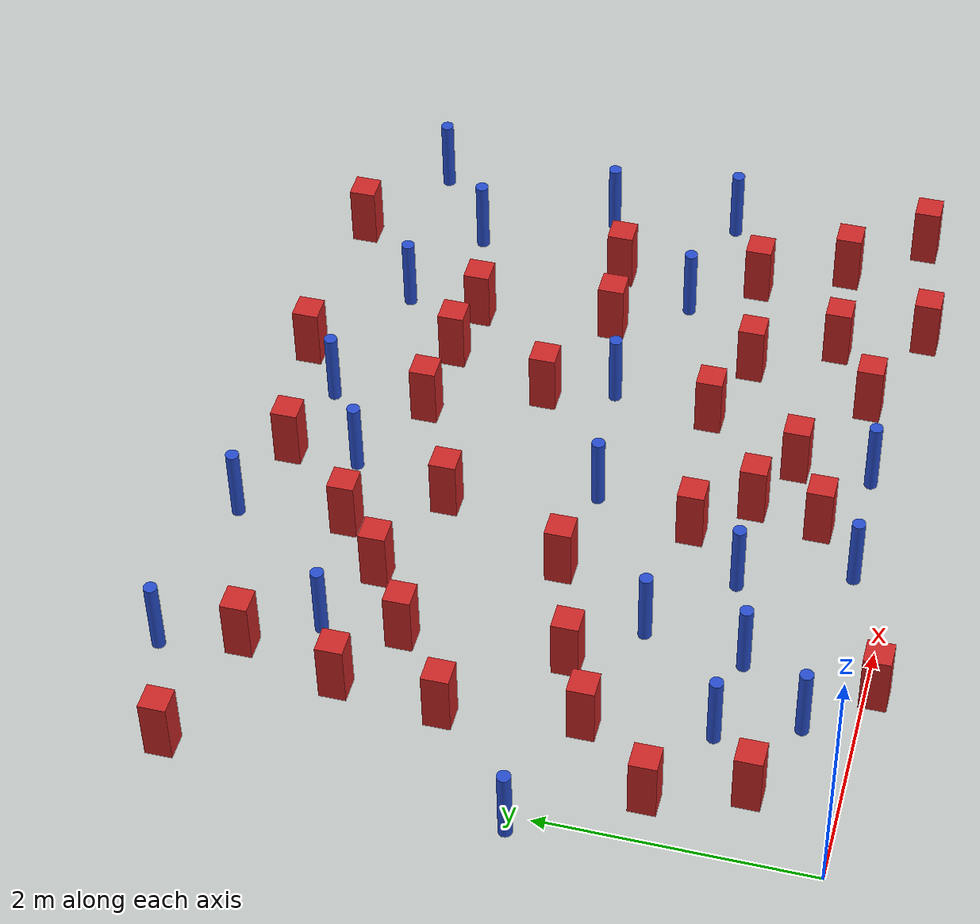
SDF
<sdf version="1.6">
 <model name="dense_61">
  <model name="pole_obstacle0">
   <static>true</static>
   <pose>2.39526000976 1.07714002078 -3.09024884793e-07 -7.19054271911e-07 -2.11315075167e-07 -1.93935509283e-07</pose>
   <link name="link">
    <pose>0 0 0.3 0 -0 0</pose>
    <inertial>
     <mass>1</mass>
     <inertia><ixx>0.145833</ixx><ixy>0</ixy><ixz>0</ixz><iyy>0.145833</iyy><iyz>0</iyz><izz>0.125</izz></inertia>
    </inertial>
    <collision name="collision">
     <geometry><cylinder><radius>0.05</radius><length>.6</length></cylinder></geometry>
    </collision>
    <visual name="visual">
     <geometry><cylinder><radius>0.05</radius><length>.6</length></cylinder></geometry>
     <material>
      <script><name>Gazebo/Blue</name><uri>file://media/materials/scripts/gazebo.material</uri></script>
     </material>
    </visual>
   </link>
  </model>
  <model name="pole_obstacle12">
   <static>true</static>
   <pose>6.03670000976 2.83938002078 -3.09024884793e-07 -7.19054271912e-07 -2.11315075135e-07 -1.93935509265e-07</pose>
   <link name="link">
    <pose>0 0 0.3 0 -0 0</pose>
    <inertial>
     <mass>1</mass>
     <inertia><ixx>0.145833</ixx><ixy>0</ixy><ixz>0</ixz><iyy>0.145833</iyy><iyz>0</iyz><izz>0.125</izz></inertia>
    </inertial>
    <collision name="collision">
     <geometry><cylinder><radius>0.05</radius><length>.6</length></cylinder></geometry>
    </collision>
    <visual name="visual">
     <geometry><cylinder><radius>0.05</radius><length>.6</length></cylinder></geometry>
     <material>
      <script><name>Gazebo/Blue</name><uri>file://media/materials/scripts/gazebo.material</uri></script>
     </material>
    </visual>
   </link>
  </model>
  <model name="pole_obstacle22">
   <static>true</static>
   <pose>5.17877000976 2.02896002078 -3.09024884793e-07 -7.19054271912e-07 -2.11315075122e-07 -1.93935509259e-07</pose>
   <link name="link">
    <pose>0 0 0.3 0 -0 0</pose>
    <inertial>
     <mass>1</mass>
     <inertia><ixx>0.145833</ixx><ixy>0</ixy><ixz>0</ixz><iyy>0.145833</iyy><iyz>0</iyz><izz>0.125</izz></inertia>
    </inertial>
    <collision name="collision">
     <geometry><cylinder><radius>0.05</radius><length>.6</length></cylinder></geometry>
    </collision>
    <visual name="visual">
     <geometry><cylinder><radius>0.05</radius><length>.6</length></cylinder></geometry>
     <material>
      <script><name>Gazebo/Blue</name><uri>file://media/materials/scripts/gazebo.material</uri></script>
     </material>
    </visual>
   </link>
  </model>
  <model name="pole_obstacle28">
   <static>true</static>
   <pose>-0.127259990239 2.14203002078 -3.09024884848e-07 -7.19054271902e-07 -2.11315075204e-07 -1.93935509288e-07</pose>
   <link name="link">
    <pose>0 0 0.3 0 -0 0</pose>
    <inertial>
     <mass>1</mass>
     <inertia><ixx>0.145833</ixx><ixy>0</ixy><ixz>0</ixz><iyy>0.145833</iyy><iyz>0</iyz><izz>0.125</izz></inertia>
    </inertial>
    <collision name="collision">
     <geometry><cylinder><radius>0.05</radius><length>.6</length></cylinder></geometry>
    </collision>
    <visual name="visual">
     <geometry><cylinder><radius>0.05</radius><length>.6</length></cylinder></geometry>
     <material>
      <script><name>Gazebo/Blue</name><uri>file://media/materials/scripts/gazebo.material</uri></script>
     </material>
    </visual>
   </link>
  </model>
  <model name="pole_obstacle30">
   <static>true</static>
   <pose>3.63625000976 0.307209020783 -3.09024884793e-07 -7.19054271912e-07 -2.11315075164e-07 -1.93935509281e-07</pose>
   <link name="link">
    <pose>0 0 0.3 0 -0 0</pose>
    <inertial>
     <mass>1</mass>
     <inertia><ixx>0.145833</ixx><ixy>0</ixy><ixz>0</ixz><iyy>0.145833</iyy><iyz>0</iyz><izz>0.125</izz></inertia>
    </inertial>
    <collision name="collision">
     <geometry><cylinder><radius>0.05</radius><length>.6</length></cylinder></geometry>
    </collision>
    <visual name="visual">
     <geometry><cylinder><radius>0.05</radius><length>.6</length></cylinder></geometry>
     <material>
      <script><name>Gazebo/Blue</name><uri>file://media/materials/scripts/gazebo.material</uri></script>
     </material>
    </visual>
   </link>
  </model>
  <model name="square_post_obstacle25">
   <static>true</static>
   <pose>1.3880900552 2.08539997467 -4.36207812815e-07 3.75137919937e-06 9.77721102514e-07 2.47381364184e-05</pose>
   <link name="link">
    <pose>0 0 0.25 0 -0 0</pose>
    <inertial>
     <mass>100</mass>
     <inertia>
      <ixx>0.166667</ixx>
      <ixy>0</ixy>
      <ixz>0</ixz>
      <iyy>0.166667</iyy>
      <iyz>0</iyz>
      <izz>0.166667</izz>
     </inertia>
    </inertial>
    <collision name="collision"><geometry><box><size>.2 .2 .5</size></box></geometry></collision>
    <visual name="visual">
     <geometry><box><size>.2 .2 .5</size></box></geometry>
     <material>
      <script><name>Gazebo/Red</name><uri>file://media/materials/scripts/gazebo.material</uri></script>
     </material>
    </visual>
   </link>
  </model>
  <model name="pole_obstacle40">
   <static>true</static>
   <pose>6.19265000976 1.85910002078 -3.09024884793e-07 -7.19054271912e-07 -2.11315075123e-07 -1.93935509261e-07</pose>
   <link name="link">
    <pose>0 0 0.3 0 -0 0</pose>
    <inertial>
     <mass>1</mass>
     <inertia><ixx>0.145833</ixx><ixy>0</ixy><ixz>0</ixz><iyy>0.145833</iyy><iyz>0</iyz><izz>0.125</izz></inertia>
    </inertial>
    <collision name="collision">
     <geometry><cylinder><radius>0.05</radius><length>.6</length></cylinder></geometry>
    </collision>
    <visual name="visual">
     <geometry><cylinder><radius>0.05</radius><length>.6</length></cylinder></geometry>
     <material>
      <script><name>Gazebo/Blue</name><uri>file://media/materials/scripts/gazebo.material</uri></script>
     </material>
    </visual>
   </link>
  </model>
  <model name="square_post_obstacle37">
   <static>true</static>
   <pose>2.2260100552 2.34418997467 -4.36207812815e-07 3.75137919937e-06 9.77721102514e-07 2.47381364184e-05</pose>
   <link name="link">
    <pose>0 0 0.25 0 -0 0</pose>
    <inertial>
     <mass>100</mass>
     <inertia>
      <ixx>0.166667</ixx>
      <ixy>0</ixy>
      <ixz>0</ixz>
      <iyy>0.166667</iyy>
      <iyz>0</iyz>
      <izz>0.166667</izz>
     </inertia>
    </inertial>
    <collision name="collision"><geometry><box><size>.2 .2 .5</size></box></geometry></collision>
    <visual name="visual">
     <geometry><box><size>.2 .2 .5</size></box></geometry>
     <material>
      <script><name>Gazebo/Red</name><uri>file://media/materials/scripts/gazebo.material</uri></script>
     </material>
    </visual>
   </link>
  </model>
  <model name="square_post_obstacle38">
   <static>true</static>
   <pose>3.0631500552 0.597460974674 -4.36207812815e-07 3.75137919937e-06 9.77721102514e-07 2.47381364184e-05</pose>
   <link name="link">
    <pose>0 0 0.25 0 -0 0</pose>
    <inertial>
     <mass>100</mass>
     <inertia>
      <ixx>0.166667</ixx>
      <ixy>0</ixy>
      <ixz>0</ixz>
      <iyy>0.166667</iyy>
      <iyz>0</iyz>
      <izz>0.166667</izz>
     </inertia>
    </inertial>
    <collision name="collision"><geometry><box><size>.2 .2 .5</size></box></geometry></collision>
    <visual name="visual">
     <geometry><box><size>.2 .2 .5</size></box></geometry>
     <material>
      <script><name>Gazebo/Red</name><uri>file://media/materials/scripts/gazebo.material</uri></script>
     </material>
    </visual>
   </link>
  </model>
  <model name="square_post_obstacle41">
   <static>true</static>
   <pose>1.5944300552 -0.0659200253263 -4.36207812815e-07 3.75137919937e-06 9.77721102514e-07 2.47381364184e-05</pose>
   <link name="link">
    <pose>0 0 0.25 0 -0 0</pose>
    <inertial>
     <mass>100</mass>
     <inertia>
      <ixx>0.166667</ixx>
      <ixy>0</ixy>
      <ixz>0</ixz>
      <iyy>0.166667</iyy>
      <iyz>0</iyz>
      <izz>0.166667</izz>
     </inertia>
    </inertial>
    <collision name="collision"><geometry><box><size>.2 .2 .5</size></box></geometry></collision>
    <visual name="visual">
     <geometry><box><size>.2 .2 .5</size></box></geometry>
     <material>
      <script><name>Gazebo/Red</name><uri>file://media/materials/scripts/gazebo.material</uri></script>
     </material>
    </visual>
   </link>
  </model>
  <model name="square_post_obstacle42">
   <static>true</static>
   <pose>1.0119000552 4.36777997467 -4.36207812815e-07 3.75137919937e-06 9.77721102514e-07 2.47381364184e-05</pose>
   <link name="link">
    <pose>0 0 0.25 0 -0 0</pose>
    <inertial>
     <mass>100</mass>
     <inertia>
      <ixx>0.166667</ixx>
      <ixy>0</ixy>
      <ixz>0</ixz>
      <iyy>0.166667</iyy>
      <iyz>0</iyz>
      <izz>0.166667</izz>
     </inertia>
    </inertial>
    <collision name="collision"><geometry><box><size>.2 .2 .5</size></box></geometry></collision>
    <visual name="visual">
     <geometry><box><size>.2 .2 .5</size></box></geometry>
     <material>
      <script><name>Gazebo/Red</name><uri>file://media/materials/scripts/gazebo.material</uri></script>
     </material>
    </visual>
   </link>
  </model>
  <model name="pole_obstacle63">
   <static>true</static>
   <pose>5.57259000976 3.82824002078 -3.09024884793e-07 -7.19054271912e-07 -2.11315075144e-07 -1.93935509269e-07</pose>
   <link name="link">
    <pose>0 0 0.3 0 -0 0</pose>
    <inertial>
     <mass>1</mass>
     <inertia><ixx>0.145833</ixx><ixy>0</ixy><ixz>0</ixz><iyy>0.145833</iyy><iyz>0</iyz><izz>0.125</izz></inertia>
    </inertial>
    <collision name="collision">
     <geometry><cylinder><radius>0.05</radius><length>.6</length></cylinder></geometry>
    </collision>
    <visual name="visual">
     <geometry><cylinder><radius>0.05</radius><length>.6</length></cylinder></geometry>
     <material>
      <script><name>Gazebo/Blue</name><uri>file://media/materials/scripts/gazebo.material</uri></script>
     </material>
    </visual>
   </link>
  </model>
  <model name="pole_obstacle64">
   <static>true</static>
   <pose>3.00101000976 2.25320002078 -3.09024884848e-07 -7.19054271903e-07 -2.11315075185e-07 -1.93935509279e-07</pose>
   <link name="link">
    <pose>0 0 0.3 0 -0 0</pose>
    <inertial>
     <mass>1</mass>
     <inertia><ixx>0.145833</ixx><ixy>0</ixy><ixz>0</ixz><iyy>0.145833</iyy><iyz>0</iyz><izz>0.125</izz></inertia>
    </inertial>
    <collision name="collision">
     <geometry><cylinder><radius>0.05</radius><length>.6</length></cylinder></geometry>
    </collision>
    <visual name="visual">
     <geometry><cylinder><radius>0.05</radius><length>.6</length></cylinder></geometry>
     <material>
      <script><name>Gazebo/Blue</name><uri>file://media/materials/scripts/gazebo.material</uri></script>
     </material>
    </visual>
   </link>
  </model>
  <model name="square_post_obstacle55">
   <static>true</static>
   <pose>4.6139600552 1.41483997467 -4.36207812815e-07 3.75137919937e-06 9.77721102514e-07 2.47381364184e-05</pose>
   <link name="link">
    <pose>0 0 0.25 0 -0 0</pose>
    <inertial>
     <mass>100</mass>
     <inertia>
      <ixx>0.166667</ixx>
      <ixy>0</ixy>
      <ixz>0</ixz>
      <iyy>0.166667</iyy>
      <iyz>0</iyz>
      <izz>0.166667</izz>
     </inertia>
    </inertial>
    <collision name="collision"><geometry><box><size>.2 .2 .5</size></box></geometry></collision>
    <visual name="visual">
     <geometry><box><size>.2 .2 .5</size></box></geometry>
     <material>
      <script><name>Gazebo/Red</name><uri>file://media/materials/scripts/gazebo.material</uri></script>
     </material>
    </visual>
   </link>
  </model>
  <model name="square_post_obstacle56">
   <static>true</static>
   <pose>2.8118300552 1.50130997467 -4.36207812815e-07 3.75137919937e-06 9.77721102514e-07 2.47381364184e-05</pose>
   <link name="link">
    <pose>0 0 0.25 0 -0 0</pose>
    <inertial>
     <mass>100</mass>
     <inertia>
      <ixx>0.166667</ixx>
      <ixy>0</ixy>
      <ixz>0</ixz>
      <iyy>0.166667</iyy>
      <iyz>0</iyz>
      <izz>0.166667</izz>
     </inertia>
    </inertial>
    <collision name="collision"><geometry><box><size>.2 .2 .5</size></box></geometry></collision>
    <visual name="visual">
     <geometry><box><size>.2 .2 .5</size></box></geometry>
     <material>
      <script><name>Gazebo/Red</name><uri>file://media/materials/scripts/gazebo.material</uri></script>
     </material>
    </visual>
   </link>
  </model>
  <model name="square_post_obstacle68">
   <static>true</static>
   <pose>1.8762800552 3.62501997467 -4.36207812815e-07 3.75137919937e-06 9.77721102514e-07 2.47381364184e-05</pose>
   <link name="link">
    <pose>0 0 0.25 0 -0 0</pose>
    <inertial>
     <mass>100</mass>
     <inertia>
      <ixx>0.166667</ixx>
      <ixy>0</ixy>
      <ixz>0</ixz>
      <iyy>0.166667</iyy>
      <iyz>0</iyz>
      <izz>0.166667</izz>
     </inertia>
    </inertial>
    <collision name="collision"><geometry><box><size>.2 .2 .5</size></box></geometry></collision>
    <visual name="visual">
     <geometry><box><size>.2 .2 .5</size></box></geometry>
     <material>
      <script><name>Gazebo/Red</name><uri>file://media/materials/scripts/gazebo.material</uri></script>
     </material>
    </visual>
   </link>
  </model>
  <model name="pole_obstacle81">
   <static>true</static>
   <pose>2.65906000976 0.267408020783 -3.09024884793e-07 -7.19054271912e-07 -2.11315075125e-07 -1.93935509261e-07</pose>
   <link name="link">
    <pose>0 0 0.3 0 -0 0</pose>
    <inertial>
     <mass>1</mass>
     <inertia><ixx>0.145833</ixx><ixy>0</ixy><ixz>0</ixz><iyy>0.145833</iyy><iyz>0</iyz><izz>0.125</izz></inertia>
    </inertial>
    <collision name="collision">
     <geometry><cylinder><radius>0.05</radius><length>.6</length></cylinder></geometry>
    </collision>
    <visual name="visual">
     <geometry><cylinder><radius>0.05</radius><length>.6</length></cylinder></geometry>
     <material>
      <script><name>Gazebo/Blue</name><uri>file://media/materials/scripts/gazebo.material</uri></script>
     </material>
    </visual>
   </link>
  </model>
  <model name="square_post_obstacle70">
   <static>true</static>
   <pose>0.718320055196 2.83022997467 -4.36207812815e-07 3.75137919937e-06 9.77721102514e-07 2.47381364184e-05</pose>
   <link name="link">
    <pose>0 0 0.25 0 -0 0</pose>
    <inertial>
     <mass>100</mass>
     <inertia>
      <ixx>0.166667</ixx>
      <ixy>0</ixy>
      <ixz>0</ixz>
      <iyy>0.166667</iyy>
      <iyz>0</iyz>
      <izz>0.166667</izz>
     </inertia>
    </inertial>
    <collision name="collision"><geometry><box><size>.2 .2 .5</size></box></geometry></collision>
    <visual name="visual">
     <geometry><box><size>.2 .2 .5</size></box></geometry>
     <material>
      <script><name>Gazebo/Red</name><uri>file://media/materials/scripts/gazebo.material</uri></script>
     </material>
    </visual>
   </link>
  </model>
  <model name="square_post_obstacle73">
   <static>true</static>
   <pose>2.9115300552 4.61348997467 -4.36207812815e-07 3.75137919937e-06 9.77721102514e-07 2.47381364184e-05</pose>
   <link name="link">
    <pose>0 0 0.25 0 -0 0</pose>
    <inertial>
     <mass>100</mass>
     <inertia>
      <ixx>0.166667</ixx>
      <ixy>0</ixy>
      <ixz>0</ixz>
      <iyy>0.166667</iyy>
      <iyz>0</iyz>
      <izz>0.166667</izz>
     </inertia>
    </inertial>
    <collision name="collision"><geometry><box><size>.2 .2 .5</size></box></geometry></collision>
    <visual name="visual">
     <geometry><box><size>.2 .2 .5</size></box></geometry>
     <material>
      <script><name>Gazebo/Red</name><uri>file://media/materials/scripts/gazebo.material</uri></script>
     </material>
    </visual>
   </link>
  </model>
  <model name="pole_obstacle91">
   <static>true</static>
   <pose>3.58953000976 4.48027002078 -3.09024884793e-07 -7.19054271912e-07 -2.11315075134e-07 -1.93935509266e-07</pose>
   <link name="link">
    <pose>0 0 0.3 0 -0 0</pose>
    <inertial>
     <mass>1</mass>
     <inertia><ixx>0.145833</ixx><ixy>0</ixy><ixz>0</ixz><iyy>0.145833</iyy><iyz>0</iyz><izz>0.125</izz></inertia>
    </inertial>
    <collision name="collision">
     <geometry><cylinder><radius>0.05</radius><length>.6</length></cylinder></geometry>
    </collision>
    <visual name="visual">
     <geometry><cylinder><radius>0.05</radius><length>.6</length></cylinder></geometry>
     <material>
      <script><name>Gazebo/Blue</name><uri>file://media/materials/scripts/gazebo.material</uri></script>
     </material>
    </visual>
   </link>
  </model>
  <model name="square_post_obstacle86">
   <static>true</static>
   <pose>4.7242600552 3.62307997467 -4.36207812815e-07 3.75137919937e-06 9.77721102514e-07 2.47381364184e-05</pose>
   <link name="link">
    <pose>0 0 0.25 0 -0 0</pose>
    <inertial>
     <mass>100</mass>
     <inertia>
      <ixx>0.166667</ixx>
      <ixy>0</ixy>
      <ixz>0</ixz>
      <iyy>0.166667</iyy>
      <iyz>0</iyz>
      <izz>0.166667</izz>
     </inertia>
    </inertial>
    <collision name="collision"><geometry><box><size>.2 .2 .5</size></box></geometry></collision>
    <visual name="visual">
     <geometry><box><size>.2 .2 .5</size></box></geometry>
     <material>
      <script><name>Gazebo/Red</name><uri>file://media/materials/scripts/gazebo.material</uri></script>
     </material>
    </visual>
   </link>
  </model>
  <model name="pole_obstacle95">
   <static>true</static>
   <pose>1.79160000976 1.62040002078 -3.09024884793e-07 -7.19054271912e-07 -2.1131507513e-07 -1.93935509263e-07</pose>
   <link name="link">
    <pose>0 0 0.3 0 -0 0</pose>
    <inertial>
     <mass>1</mass>
     <inertia><ixx>0.145833</ixx><ixy>0</ixy><ixz>0</ixz><iyy>0.145833</iyy><iyz>0</iyz><izz>0.125</izz></inertia>
    </inertial>
    <collision name="collision">
     <geometry><cylinder><radius>0.05</radius><length>.6</length></cylinder></geometry>
    </collision>
    <visual name="visual">
     <geometry><cylinder><radius>0.05</radius><length>.6</length></cylinder></geometry>
     <material>
      <script><name>Gazebo/Blue</name><uri>file://media/materials/scripts/gazebo.material</uri></script>
     </material>
    </visual>
   </link>
  </model>
  <model name="pole_obstacle101">
   <static>true</static>
   <pose>4.76173000976 4.20979002078 -3.09024884793e-07 -7.19054271911e-07 -2.1131507516e-07 -1.93935509277e-07</pose>
   <link name="link">
    <pose>0 0 0.3 0 -0 0</pose>
    <inertial>
     <mass>1</mass>
     <inertia><ixx>0.145833</ixx><ixy>0</ixy><ixz>0</ixz><iyy>0.145833</iyy><iyz>0</iyz><izz>0.125</izz></inertia>
    </inertial>
    <collision name="collision">
     <geometry><cylinder><radius>0.05</radius><length>.6</length></cylinder></geometry>
    </collision>
    <visual name="visual">
     <geometry><cylinder><radius>0.05</radius><length>.6</length></cylinder></geometry>
     <material>
      <script><name>Gazebo/Blue</name><uri>file://media/materials/scripts/gazebo.material</uri></script>
     </material>
    </visual>
   </link>
  </model>
  <model name="square_post_obstacle98">
   <static>true</static>
   <pose>4.3959700552 0.457817974674 -4.36207812815e-07 3.75137919937e-06 9.77721102514e-07 2.47381364184e-05</pose>
   <link name="link">
    <pose>0 0 0.25 0 -0 0</pose>
    <inertial>
     <mass>100</mass>
     <inertia>
      <ixx>0.166667</ixx>
      <ixy>0</ixy>
      <ixz>0</ixz>
      <iyy>0.166667</iyy>
      <iyz>0</iyz>
      <izz>0.166667</izz>
     </inertia>
    </inertial>
    <collision name="collision"><geometry><box><size>.2 .2 .5</size></box></geometry></collision>
    <visual name="visual">
     <geometry><box><size>.2 .2 .5</size></box></geometry>
     <material>
      <script><name>Gazebo/Red</name><uri>file://media/materials/scripts/gazebo.material</uri></script>
     </material>
    </visual>
   </link>
  </model>
  <model name="square_post_obstacle99">
   <static>true</static>
   <pose>4.9650900552 0.801833974674 -4.36207812815e-07 3.75137919937e-06 9.77721102514e-07 2.47381364184e-05</pose>
   <link name="link">
    <pose>0 0 0.25 0 -0 0</pose>
    <inertial>
     <mass>100</mass>
     <inertia>
      <ixx>0.166667</ixx>
      <ixy>0</ixy>
      <ixz>0</ixz>
      <iyy>0.166667</iyy>
      <iyz>0</iyz>
      <izz>0.166667</izz>
     </inertia>
    </inertial>
    <collision name="collision"><geometry><box><size>.2 .2 .5</size></box></geometry></collision>
    <visual name="visual">
     <geometry><box><size>.2 .2 .5</size></box></geometry>
     <material>
      <script><name>Gazebo/Red</name><uri>file://media/materials/scripts/gazebo.material</uri></script>
     </material>
    </visual>
   </link>
  </model>
  <model name="pole_obstacle105">
   <static>true</static>
   <pose>4.09069000976 2.37770002078 -3.09024884793e-07 -7.19054271912e-07 -2.11315075144e-07 -1.93935509269e-07</pose>
   <link name="link">
    <pose>0 0 0.3 0 -0 0</pose>
    <inertial>
     <mass>1</mass>
     <inertia><ixx>0.145833</ixx><ixy>0</ixy><ixz>0</ixz><iyy>0.145833</iyy><iyz>0</iyz><izz>0.125</izz></inertia>
    </inertial>
    <collision name="collision">
     <geometry><cylinder><radius>0.05</radius><length>.6</length></cylinder></geometry>
    </collision>
    <visual name="visual">
     <geometry><cylinder><radius>0.05</radius><length>.6</length></cylinder></geometry>
     <material>
      <script><name>Gazebo/Blue</name><uri>file://media/materials/scripts/gazebo.material</uri></script>
     </material>
    </visual>
   </link>
  </model>
  <model name="square_post_obstacle101">
   <static>true</static>
   <pose>3.9905300552 4.78887997467 -4.36207812815e-07 3.75137919937e-06 9.77721102514e-07 2.47381364184e-05</pose>
   <link name="link">
    <pose>0 0 0.25 0 -0 0</pose>
    <inertial>
     <mass>100</mass>
     <inertia>
      <ixx>0.166667</ixx>
      <ixy>0</ixy>
      <ixz>0</ixz>
      <iyy>0.166667</iyy>
      <iyz>0</iyz>
      <izz>0.166667</izz>
     </inertia>
    </inertial>
    <collision name="collision"><geometry><box><size>.2 .2 .5</size></box></geometry></collision>
    <visual name="visual">
     <geometry><box><size>.2 .2 .5</size></box></geometry>
     <material>
      <script><name>Gazebo/Red</name><uri>file://media/materials/scripts/gazebo.material</uri></script>
     </material>
    </visual>
   </link>
  </model>
  <model name="square_post_obstacle106">
   <static>true</static>
   <pose>3.6273600552 0.877187974674 -4.36207812815e-07 3.75137919937e-06 9.77721102514e-07 2.47381364184e-05</pose>
   <link name="link">
    <pose>0 0 0.25 0 -0 0</pose>
    <inertial>
     <mass>100</mass>
     <inertia>
      <ixx>0.166667</ixx>
      <ixy>0</ixy>
      <ixz>0</ixz>
      <iyy>0.166667</iyy>
      <iyz>0</iyz>
      <izz>0.166667</izz>
     </inertia>
    </inertial>
    <collision name="collision"><geometry><box><size>.2 .2 .5</size></box></geometry></collision>
    <visual name="visual">
     <geometry><box><size>.2 .2 .5</size></box></geometry>
     <material>
      <script><name>Gazebo/Red</name><uri>file://media/materials/scripts/gazebo.material</uri></script>
     </material>
    </visual>
   </link>
  </model>
  <model name="square_post_obstacle110">
   <static>true</static>
   <pose>5.8374800552 0.875446974674 -4.36207812815e-07 3.75137919937e-06 9.77721102514e-07 2.47381364184e-05</pose>
   <link name="link">
    <pose>0 0 0.25 0 -0 0</pose>
    <inertial>
     <mass>100</mass>
     <inertia>
      <ixx>0.166667</ixx>
      <ixy>0</ixy>
      <ixz>0</ixz>
      <iyy>0.166667</iyy>
      <iyz>0</iyz>
      <izz>0.166667</izz>
     </inertia>
    </inertial>
    <collision name="collision"><geometry><box><size>.2 .2 .5</size></box></geometry></collision>
    <visual name="visual">
     <geometry><box><size>.2 .2 .5</size></box></geometry>
     <material>
      <script><name>Gazebo/Red</name><uri>file://media/materials/scripts/gazebo.material</uri></script>
     </material>
    </visual>
   </link>
  </model>
  <model name="pole_obstacle114">
   <static>true</static>
   <pose>2.91105000976 4.09429002078 -3.09024884848e-07 -7.19054271903e-07 -2.11315075193e-07 -1.93935509285e-07</pose>
   <link name="link">
    <pose>0 0 0.3 0 -0 0</pose>
    <inertial>
     <mass>1</mass>
     <inertia><ixx>0.145833</ixx><ixy>0</ixy><ixz>0</ixz><iyy>0.145833</iyy><iyz>0</iyz><izz>0.125</izz></inertia>
    </inertial>
    <collision name="collision">
     <geometry><cylinder><radius>0.05</radius><length>.6</length></cylinder></geometry>
    </collision>
    <visual name="visual">
     <geometry><cylinder><radius>0.05</radius><length>.6</length></cylinder></geometry>
     <material>
      <script><name>Gazebo/Blue</name><uri>file://media/materials/scripts/gazebo.material</uri></script>
     </material>
    </visual>
   </link>
  </model>
  <model name="square_post_obstacle115">
   <static>true</static>
   <pose>0.795203055196 3.60834997467 -4.36207812815e-07 3.75137919937e-06 9.77721102514e-07 2.47381364184e-05</pose>
   <link name="link">
    <pose>0 0 0.25 0 -0 0</pose>
    <inertial>
     <mass>100</mass>
     <inertia>
      <ixx>0.166667</ixx>
      <ixy>0</ixy>
      <ixz>0</ixz>
      <iyy>0.166667</iyy>
      <iyz>0</iyz>
      <izz>0.166667</izz>
     </inertia>
    </inertial>
    <collision name="collision"><geometry><box><size>.2 .2 .5</size></box></geometry></collision>
    <visual name="visual">
     <geometry><box><size>.2 .2 .5</size></box></geometry>
     <material>
      <script><name>Gazebo/Red</name><uri>file://media/materials/scripts/gazebo.material</uri></script>
     </material>
    </visual>
   </link>
  </model>
  <model name="square_post_obstacle127">
   <static>true</static>
   <pose>5.4414000552 2.63874997467 -4.36207812815e-07 3.75137919937e-06 9.77721102514e-07 2.47381364184e-05</pose>
   <link name="link">
    <pose>0 0 0.25 0 -0 0</pose>
    <inertial>
     <mass>100</mass>
     <inertia>
      <ixx>0.166667</ixx>
      <ixy>0</ixy>
      <ixz>0</ixz>
      <iyy>0.166667</iyy>
      <iyz>0</iyz>
      <izz>0.166667</izz>
     </inertia>
    </inertial>
    <collision name="collision"><geometry><box><size>.2 .2 .5</size></box></geometry></collision>
    <visual name="visual">
     <geometry><box><size>.2 .2 .5</size></box></geometry>
     <material>
      <script><name>Gazebo/Red</name><uri>file://media/materials/scripts/gazebo.material</uri></script>
     </material>
    </visual>
   </link>
  </model>
  <model name="square_post_obstacle129">
   <static>true</static>
   <pose>3.9388900552 2.89539997467 -4.36207812815e-07 3.75137919937e-06 9.77721102514e-07 2.47381364184e-05</pose>
   <link name="link">
    <pose>0 0 0.25 0 -0 0</pose>
    <inertial>
     <mass>100</mass>
     <inertia>
      <ixx>0.166667</ixx>
      <ixy>0</ixy>
      <ixz>0</ixz>
      <iyy>0.166667</iyy>
      <iyz>0</iyz>
      <izz>0.166667</izz>
     </inertia>
    </inertial>
    <collision name="collision"><geometry><box><size>.2 .2 .5</size></box></geometry></collision>
    <visual name="visual">
     <geometry><box><size>.2 .2 .5</size></box></geometry>
     <material>
      <script><name>Gazebo/Red</name><uri>file://media/materials/scripts/gazebo.material</uri></script>
     </material>
    </visual>
   </link>
  </model>
  <model name="square_post_obstacle133">
   <static>true</static>
   <pose>2.6792100552 3.32822997467 -4.36207812815e-07 3.75137919937e-06 9.77721102514e-07 2.47381364184e-05</pose>
   <link name="link">
    <pose>0 0 0.25 0 -0 0</pose>
    <inertial>
     <mass>100</mass>
     <inertia>
      <ixx>0.166667</ixx>
      <ixy>0</ixy>
      <ixz>0</ixz>
      <iyy>0.166667</iyy>
      <iyz>0</iyz>
      <izz>0.166667</izz>
     </inertia>
    </inertial>
    <collision name="collision"><geometry><box><size>.2 .2 .5</size></box></geometry></collision>
    <visual name="visual">
     <geometry><box><size>.2 .2 .5</size></box></geometry>
     <material>
      <script><name>Gazebo/Red</name><uri>file://media/materials/scripts/gazebo.material</uri></script>
     </material>
    </visual>
   </link>
  </model>
  <model name="pole_obstacle138">
   <static>true</static>
   <pose>2.24457000976 4.81183002078 -3.09024884848e-07 -7.19054271903e-07 -2.11315075193e-07 -1.93935509285e-07</pose>
   <link name="link">
    <pose>0 0 0.3 0 -0 0</pose>
    <inertial>
     <mass>1</mass>
     <inertia><ixx>0.145833</ixx><ixy>0</ixy><ixz>0</ixz><iyy>0.145833</iyy><iyz>0</iyz><izz>0.125</izz></inertia>
    </inertial>
    <collision name="collision">
     <geometry><cylinder><radius>0.05</radius><length>.6</length></cylinder></geometry>
    </collision>
    <visual name="visual">
     <geometry><cylinder><radius>0.05</radius><length>.6</length></cylinder></geometry>
     <material>
      <script><name>Gazebo/Blue</name><uri>file://media/materials/scripts/gazebo.material</uri></script>
     </material>
    </visual>
   </link>
  </model>
  <model name="square_post_obstacle140">
   <static>true</static>
   <pose>1.3394700552 3.28426997467 -4.36207812815e-07 3.75137919937e-06 9.77721102514e-07 2.47381364184e-05</pose>
   <link name="link">
    <pose>0 0 0.25 0 -0 0</pose>
    <inertial>
     <mass>100</mass>
     <inertia>
      <ixx>0.166667</ixx>
      <ixy>0</ixy>
      <ixz>0</ixz>
      <iyy>0.166667</iyy>
      <iyz>0</iyz>
      <izz>0.166667</izz>
     </inertia>
    </inertial>
    <collision name="collision"><geometry><box><size>.2 .2 .5</size></box></geometry></collision>
    <visual name="visual">
     <geometry><box><size>.2 .2 .5</size></box></geometry>
     <material>
      <script><name>Gazebo/Red</name><uri>file://media/materials/scripts/gazebo.material</uri></script>
     </material>
    </visual>
   </link>
  </model>
  <model name="pole_obstacle146">
   <static>true</static>
   <pose>1.29387000976 3.86922002078 -3.09024884848e-07 -7.19054271902e-07 -2.11315075192e-07 -1.93935509282e-07</pose>
   <link name="link">
    <pose>0 0 0.3 0 -0 0</pose>
    <inertial>
     <mass>1</mass>
     <inertia><ixx>0.145833</ixx><ixy>0</ixy><ixz>0</ixz><iyy>0.145833</iyy><iyz>0</iyz><izz>0.125</izz></inertia>
    </inertial>
    <collision name="collision">
     <geometry><cylinder><radius>0.05</radius><length>.6</length></cylinder></geometry>
    </collision>
    <visual name="visual">
     <geometry><cylinder><radius>0.05</radius><length>.6</length></cylinder></geometry>
     <material>
      <script><name>Gazebo/Blue</name><uri>file://media/materials/scripts/gazebo.material</uri></script>
     </material>
    </visual>
   </link>
  </model>
  <model name="square_post_obstacle146">
   <static>true</static>
   <pose>0.539250055196 0.617836974674 -4.36207812815e-07 3.75137919937e-06 9.77721102514e-07 2.47381364184e-05</pose>
   <link name="link">
    <pose>0 0 0.25 0 -0 0</pose>
    <inertial>
     <mass>100</mass>
     <inertia>
      <ixx>0.166667</ixx>
      <ixy>0</ixy>
      <ixz>0</ixz>
      <iyy>0.166667</iyy>
      <iyz>0</iyz>
      <izz>0.166667</izz>
     </inertia>
    </inertial>
    <collision name="collision"><geometry><box><size>.2 .2 .5</size></box></geometry></collision>
    <visual name="visual">
     <geometry><box><size>.2 .2 .5</size></box></geometry>
     <material>
      <script><name>Gazebo/Red</name><uri>file://media/materials/scripts/gazebo.material</uri></script>
     </material>
    </visual>
   </link>
  </model>
  <model name="pole_obstacle158">
   <static>true</static>
   <pose>0.985646009761 0.951053020783 -3.09024884793e-07 -7.19054271912e-07 -2.11315075131e-07 -1.93935509263e-07</pose>
   <link name="link">
    <pose>0 0 0.3 0 -0 0</pose>
    <inertial>
     <mass>1</mass>
     <inertia><ixx>0.145833</ixx><ixy>0</ixy><ixz>0</ixz><iyy>0.145833</iyy><iyz>0</iyz><izz>0.125</izz></inertia>
    </inertial>
    <collision name="collision">
     <geometry><cylinder><radius>0.05</radius><length>.6</length></cylinder></geometry>
    </collision>
    <visual name="visual">
     <geometry><cylinder><radius>0.05</radius><length>.6</length></cylinder></geometry>
     <material>
      <script><name>Gazebo/Blue</name><uri>file://media/materials/scripts/gazebo.material</uri></script>
     </material>
    </visual>
   </link>
  </model>
  <model name="pole_obstacle162">
   <static>true</static>
   <pose>1.19925000976 0.372460020783 -3.09024884793e-07 -7.19054271912e-07 -2.11315075133e-07 -1.93935509264e-07</pose>
   <link name="link">
    <pose>0 0 0.3 0 -0 0</pose>
    <inertial>
     <mass>1</mass>
     <inertia><ixx>0.145833</ixx><ixy>0</ixy><ixz>0</ixz><iyy>0.145833</iyy><iyz>0</iyz><izz>0.125</izz></inertia>
    </inertial>
    <collision name="collision">
     <geometry><cylinder><radius>0.05</radius><length>.6</length></cylinder></geometry>
    </collision>
    <visual name="visual">
     <geometry><cylinder><radius>0.05</radius><length>.6</length></cylinder></geometry>
     <material>
      <script><name>Gazebo/Blue</name><uri>file://media/materials/scripts/gazebo.material</uri></script>
     </material>
    </visual>
   </link>
  </model>
  <model name="square_post_obstacle164">
   <static>true</static>
   <pose>5.2255000552 0.151277974674 -4.36207812815e-07 3.75137919937e-06 9.77721102514e-07 2.47381364184e-05</pose>
   <link name="link">
    <pose>0 0 0.25 0 -0 0</pose>
    <inertial>
     <mass>100</mass>
     <inertia>
      <ixx>0.166667</ixx>
      <ixy>0</ixy>
      <ixz>0</ixz>
      <iyy>0.166667</iyy>
      <iyz>0</iyz>
      <izz>0.166667</izz>
     </inertia>
    </inertial>
    <collision name="collision"><geometry><box><size>.2 .2 .5</size></box></geometry></collision>
    <visual name="visual">
     <geometry><box><size>.2 .2 .5</size></box></geometry>
     <material>
      <script><name>Gazebo/Red</name><uri>file://media/materials/scripts/gazebo.material</uri></script>
     </material>
    </visual>
   </link>
  </model>
  <model name="square_post_obstacle167">
   <static>true</static>
   <pose>3.5825800552 3.73836997467 -4.36207812815e-07 3.75137919937e-06 9.77721102514e-07 2.47381364184e-05</pose>
   <link name="link">
    <pose>0 0 0.25 0 -0 0</pose>
    <inertial>
     <mass>100</mass>
     <inertia>
      <ixx>0.166667</ixx>
      <ixy>0</ixy>
      <ixz>0</ixz>
      <iyy>0.166667</iyy>
      <iyz>0</iyz>
      <izz>0.166667</izz>
     </inertia>
    </inertial>
    <collision name="collision"><geometry><box><size>.2 .2 .5</size></box></geometry></collision>
    <visual name="visual">
     <geometry><box><size>.2 .2 .5</size></box></geometry>
     <material>
      <script><name>Gazebo/Red</name><uri>file://media/materials/scripts/gazebo.material</uri></script>
     </material>
    </visual>
   </link>
  </model>
  <model name="square_post_obstacle173">
   <static>true</static>
   <pose>5.5322900552 1.54108997467 -4.36207812815e-07 3.75137919937e-06 9.77721102514e-07 2.47381364184e-05</pose>
   <link name="link">
    <pose>0 0 0.25 0 -0 0</pose>
    <inertial>
     <mass>100</mass>
     <inertia>
      <ixx>0.166667</ixx>
      <ixy>0</ixy>
      <ixz>0</ixz>
      <iyy>0.166667</iyy>
      <iyz>0</iyz>
      <izz>0.166667</izz>
     </inertia>
    </inertial>
    <collision name="collision"><geometry><box><size>.2 .2 .5</size></box></geometry></collision>
    <visual name="visual">
     <geometry><box><size>.2 .2 .5</size></box></geometry>
     <material>
      <script><name>Gazebo/Red</name><uri>file://media/materials/scripts/gazebo.material</uri></script>
     </material>
    </visual>
   </link>
  </model>
  <model name="square_post_obstacle174">
   <static>true</static>
   <pose>0.855192055196 1.84249997467 -4.36207812815e-07 3.75137919937e-06 9.77721102514e-07 2.47381364184e-05</pose>
   <link name="link">
    <pose>0 0 0.25 0 -0 0</pose>
    <inertial>
     <mass>100</mass>
     <inertia>
      <ixx>0.166667</ixx>
      <ixy>0</ixy>
      <ixz>0</ixz>
      <iyy>0.166667</iyy>
      <iyz>0</iyz>
      <izz>0.166667</izz>
     </inertia>
    </inertial>
    <collision name="collision"><geometry><box><size>.2 .2 .5</size></box></geometry></collision>
    <visual name="visual">
     <geometry><box><size>.2 .2 .5</size></box></geometry>
     <material>
      <script><name>Gazebo/Red</name><uri>file://media/materials/scripts/gazebo.material</uri></script>
     </material>
    </visual>
   </link>
  </model>
  <model name="square_post_obstacle183">
   <static>true</static>
   <pose>5.4671000552 4.77313997467 -4.36207812815e-07 3.75137919937e-06 9.77721102514e-07 2.47381364184e-05</pose>
   <link name="link">
    <pose>0 0 0.25 0 -0 0</pose>
    <inertial>
     <mass>100</mass>
     <inertia>
      <ixx>0.166667</ixx>
      <ixy>0</ixy>
      <ixz>0</ixz>
      <iyy>0.166667</iyy>
      <iyz>0</iyz>
      <izz>0.166667</izz>
     </inertia>
    </inertial>
    <collision name="collision"><geometry><box><size>.2 .2 .5</size></box></geometry></collision>
    <visual name="visual">
     <geometry><box><size>.2 .2 .5</size></box></geometry>
     <material>
      <script><name>Gazebo/Red</name><uri>file://media/materials/scripts/gazebo.material</uri></script>
     </material>
    </visual>
   </link>
  </model>
  <model name="square_post_obstacle186">
   <static>true</static>
   <pose>6.2996600552 0.319370974674 -4.36207812815e-07 3.75137919937e-06 9.77721102514e-07 2.47381364184e-05</pose>
   <link name="link">
    <pose>0 0 0.25 0 -0 0</pose>
    <inertial>
     <mass>100</mass>
     <inertia>
      <ixx>0.166667</ixx>
      <ixy>0</ixy>
      <ixz>0</ixz>
      <iyy>0.166667</iyy>
      <iyz>0</iyz>
      <izz>0.166667</izz>
     </inertia>
    </inertial>
    <collision name="collision"><geometry><box><size>.2 .2 .5</size></box></geometry></collision>
    <visual name="visual">
     <geometry><box><size>.2 .2 .5</size></box></geometry>
     <material>
      <script><name>Gazebo/Red</name><uri>file://media/materials/scripts/gazebo.material</uri></script>
     </material>
    </visual>
   </link>
  </model>
  <model name="square_post_obstacle190">
   <static>true</static>
   <pose>0.0273410551963 4.61471997467 -4.36207812815e-07 3.75137919937e-06 9.77721102514e-07 2.47381364184e-05</pose>
   <link name="link">
    <pose>0 0 0.25 0 -0 0</pose>
    <inertial>
     <mass>100</mass>
     <inertia>
      <ixx>0.166667</ixx>
      <ixy>0</ixy>
      <ixz>0</ixz>
      <iyy>0.166667</iyy>
      <iyz>0</iyz>
      <izz>0.166667</izz>
     </inertia>
    </inertial>
    <collision name="collision"><geometry><box><size>.2 .2 .5</size></box></geometry></collision>
    <visual name="visual">
     <geometry><box><size>.2 .2 .5</size></box></geometry>
     <material>
      <script><name>Gazebo/Red</name><uri>file://media/materials/scripts/gazebo.material</uri></script>
     </material>
    </visual>
   </link>
  </model>
  <model name="square_post_obstacle192">
   <static>true</static>
   <pose>4.2254400552 3.69351997467 -4.36207812815e-07 3.75137919937e-06 9.77721102514e-07 2.47381364184e-05</pose>
   <link name="link">
    <pose>0 0 0.25 0 -0 0</pose>
    <inertial>
     <mass>100</mass>
     <inertia>
      <ixx>0.166667</ixx>
      <ixy>0</ixy>
      <ixz>0</ixz>
      <iyy>0.166667</iyy>
      <iyz>0</iyz>
      <izz>0.166667</izz>
     </inertia>
    </inertial>
    <collision name="collision"><geometry><box><size>.2 .2 .5</size></box></geometry></collision>
    <visual name="visual">
     <geometry><box><size>.2 .2 .5</size></box></geometry>
     <material>
      <script><name>Gazebo/Red</name><uri>file://media/materials/scripts/gazebo.material</uri></script>
     </material>
    </visual>
   </link>
  </model>
  <model name="pole_obstacle190">
   <static>true</static>
   <pose>0.883283009761 4.95250002078 -3.09024884793e-07 -7.19054271912e-07 -2.11315075129e-07 -1.93935509261e-07</pose>
   <link name="link">
    <pose>0 0 0.3 0 -0 0</pose>
    <inertial>
     <mass>1</mass>
     <inertia><ixx>0.145833</ixx><ixy>0</ixy><ixz>0</ixz><iyy>0.145833</iyy><iyz>0</iyz><izz>0.125</izz></inertia>
    </inertial>
    <collision name="collision">
     <geometry><cylinder><radius>0.05</radius><length>.6</length></cylinder></geometry>
    </collision>
    <visual name="visual">
     <geometry><cylinder><radius>0.05</radius><length>.6</length></cylinder></geometry>
     <material>
      <script><name>Gazebo/Blue</name><uri>file://media/materials/scripts/gazebo.material</uri></script>
     </material>
    </visual>
   </link>
  </model>
  <model name="square_post_obstacle198">
   <static>true</static>
   <pose>3.9903300552 1.61356997467 -4.36207812815e-07 3.75137919937e-06 9.77721102514e-07 2.47381364184e-05</pose>
   <link name="link">
    <pose>0 0 0.25 0 -0 0</pose>
    <inertial>
     <mass>100</mass>
     <inertia>
      <ixx>0.166667</ixx>
      <ixy>0</ixy>
      <ixz>0</ixz>
      <iyy>0.166667</iyy>
      <iyz>0</iyz>
      <izz>0.166667</izz>
     </inertia>
    </inertial>
    <collision name="collision"><geometry><box><size>.2 .2 .5</size></box></geometry></collision>
    <visual name="visual">
     <geometry><box><size>.2 .2 .5</size></box></geometry>
     <material>
      <script><name>Gazebo/Red</name><uri>file://media/materials/scripts/gazebo.material</uri></script>
     </material>
    </visual>
   </link>
  </model>
  <model name="square_post_obstacle199">
   <static>true</static>
   <pose>4.8157900552 2.56709997467 -4.36207812815e-07 3.75137919937e-06 9.77721102514e-07 2.47381364184e-05</pose>
   <link name="link">
    <pose>0 0 0.25 0 -0 0</pose>
    <inertial>
     <mass>100</mass>
     <inertia>
      <ixx>0.166667</ixx>
      <ixy>0</ixy>
      <ixz>0</ixz>
      <iyy>0.166667</iyy>
      <iyz>0</iyz>
      <izz>0.166667</izz>
     </inertia>
    </inertial>
    <collision name="collision"><geometry><box><size>.2 .2 .5</size></box></geometry></collision>
    <visual name="visual">
     <geometry><box><size>.2 .2 .5</size></box></geometry>
     <material>
      <script><name>Gazebo/Red</name><uri>file://media/materials/scripts/gazebo.material</uri></script>
     </material>
    </visual>
   </link>
  </model>
  <model name="square_post_obstacle201">
   <static>true</static>
   <pose>2.2967500552 3.98736997467 -4.36207812815e-07 3.75137919937e-06 9.77721102514e-07 2.47381364184e-05</pose>
   <link name="link">
    <pose>0 0 0.25 0 -0 0</pose>
    <inertial>
     <mass>100</mass>
     <inertia>
      <ixx>0.166667</ixx>
      <ixy>0</ixy>
      <ixz>0</ixz>
      <iyy>0.166667</iyy>
      <iyz>0</iyz>
      <izz>0.166667</izz>
     </inertia>
    </inertial>
    <collision name="collision"><geometry><box><size>.2 .2 .5</size></box></geometry></collision>
    <visual name="visual">
     <geometry><box><size>.2 .2 .5</size></box></geometry>
     <material>
      <script><name>Gazebo/Red</name><uri>file://media/materials/scripts/gazebo.material</uri></script>
     </material>
    </visual>
   </link>
  </model>
  <model name="pole_obstacle191">
   <static>true</static>
   <pose>1.66633000976 0.880067020783 -3.09024884793e-07 -7.19054271912e-07 -2.11315075126e-07 -1.93935509261e-07</pose>
   <link name="link">
    <pose>0 0 0.3 0 -0 0</pose>
    <inertial>
     <mass>1</mass>
     <inertia><ixx>0.145833</ixx><ixy>0</ixy><ixz>0</ixz><iyy>0.145833</iyy><iyz>0</iyz><izz>0.125</izz></inertia>
    </inertial>
    <collision name="collision">
     <geometry><cylinder><radius>0.05</radius><length>.6</length></cylinder></geometry>
    </collision>
    <visual name="visual">
     <geometry><cylinder><radius>0.05</radius><length>.6</length></cylinder></geometry>
     <material>
      <script><name>Gazebo/Blue</name><uri>file://media/materials/scripts/gazebo.material</uri></script>
     </material>
    </visual>
   </link>
  </model>
  <model name="square_post_obstacle217">
   <static>true</static>
   <pose>0.332474055196 1.29039997467 -4.36207812815e-07 3.75137919937e-06 9.77721102514e-07 2.47381364184e-05</pose>
   <link name="link">
    <pose>0 0 0.25 0 -0 0</pose>
    <inertial>
     <mass>100</mass>
     <inertia>
      <ixx>0.166667</ixx>
      <ixy>0</ixy>
      <ixz>0</ixz>
      <iyy>0.166667</iyy>
      <iyz>0</iyz>
      <izz>0.166667</izz>
     </inertia>
    </inertial>
    <collision name="collision"><geometry><box><size>.2 .2 .5</size></box></geometry></collision>
    <visual name="visual">
     <geometry><box><size>.2 .2 .5</size></box></geometry>
     <material>
      <script><name>Gazebo/Red</name><uri>file://media/materials/scripts/gazebo.material</uri></script>
     </material>
    </visual>
   </link>
  </model>
  <model name="pole_obstacle209">
   <static>true</static>
   <pose>6.24596000976 4.30289002078 -3.09024884793e-07 -7.19054271911e-07 -2.1131507516e-07 -1.93935509277e-07</pose>
   <link name="link">
    <pose>0 0 0.3 0 -0 0</pose>
    <inertial>
     <mass>1</mass>
     <inertia><ixx>0.145833</ixx><ixy>0</ixy><ixz>0</ixz><iyy>0.145833</iyy><iyz>0</iyz><izz>0.125</izz></inertia>
    </inertial>
    <collision name="collision">
     <geometry><cylinder><radius>0.05</radius><length>.6</length></cylinder></geometry>
    </collision>
    <visual name="visual">
     <geometry><cylinder><radius>0.05</radius><length>.6</length></cylinder></geometry>
     <material>
      <script><name>Gazebo/Blue</name><uri>file://media/materials/scripts/gazebo.material</uri></script>
     </material>
    </visual>
   </link>
  </model>
  <model name="square_post_obstacle228">
   <static>true</static>
   <pose>3.1576600552 1.10886997467 -4.36207812815e-07 3.75137919937e-06 9.77721102514e-07 2.47381364184e-05</pose>
   <link name="link">
    <pose>0 0 0.25 0 -0 0</pose>
    <inertial>
     <mass>100</mass>
     <inertia>
      <ixx>0.166667</ixx>
      <ixy>0</ixy>
      <ixz>0</ixz>
      <iyy>0.166667</iyy>
      <iyz>0</iyz>
      <izz>0.166667</izz>
     </inertia>
    </inertial>
    <collision name="collision"><geometry><box><size>.2 .2 .5</size></box></geometry></collision>
    <visual name="visual">
     <geometry><box><size>.2 .2 .5</size></box></geometry>
     <material>
      <script><name>Gazebo/Red</name><uri>file://media/materials/scripts/gazebo.material</uri></script>
     </material>
    </visual>
   </link>
  </model>
 </model>
</sdf>
